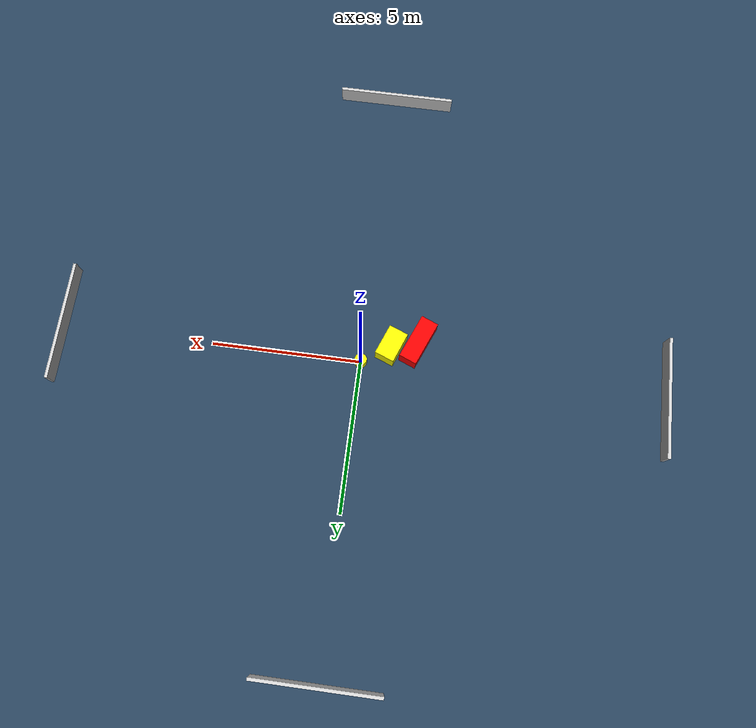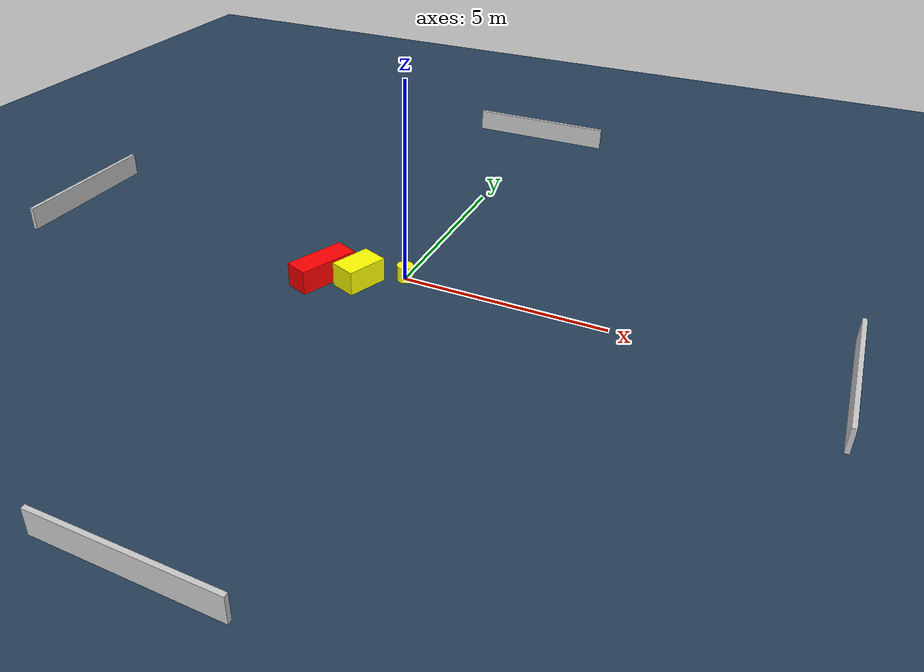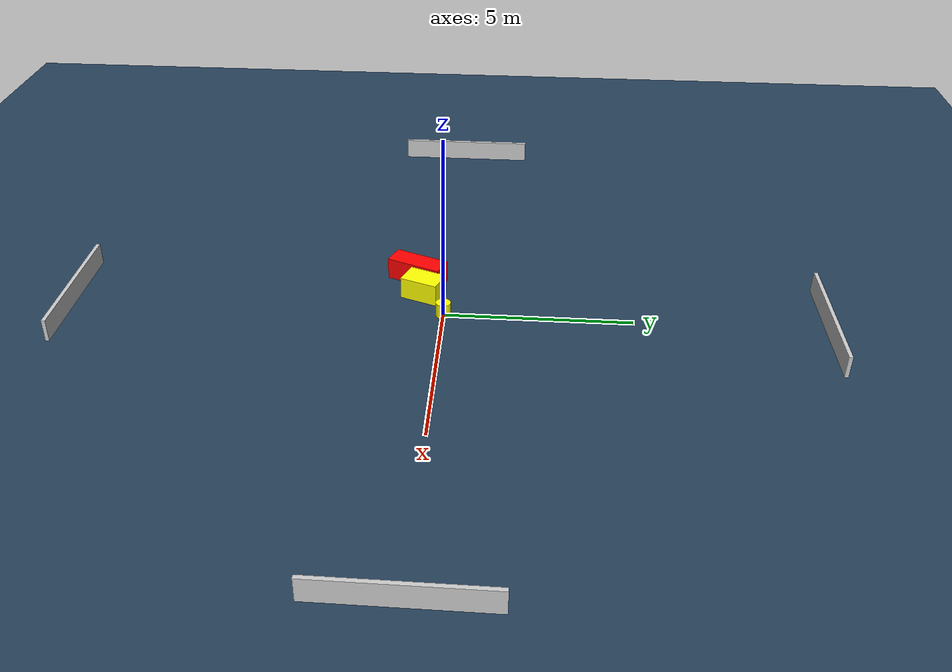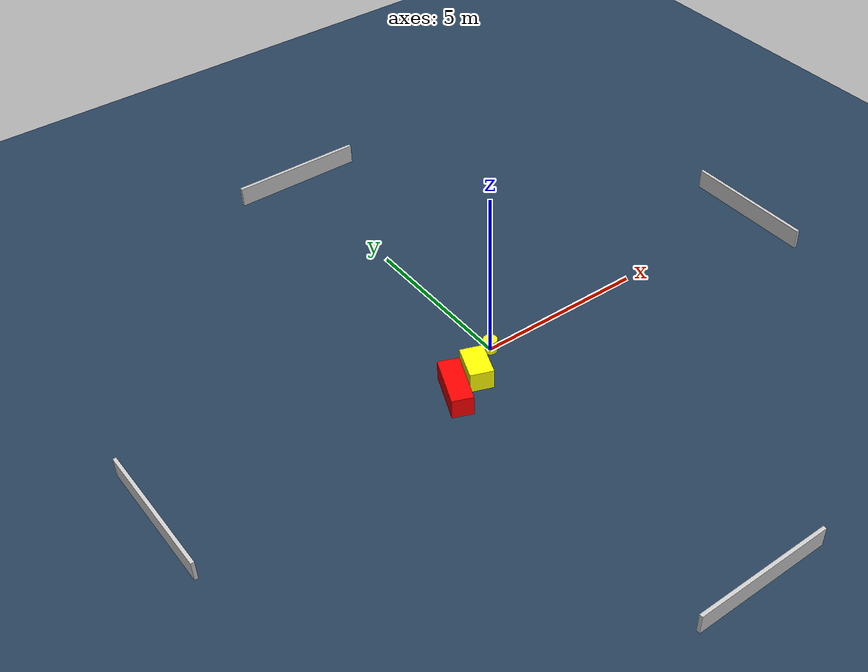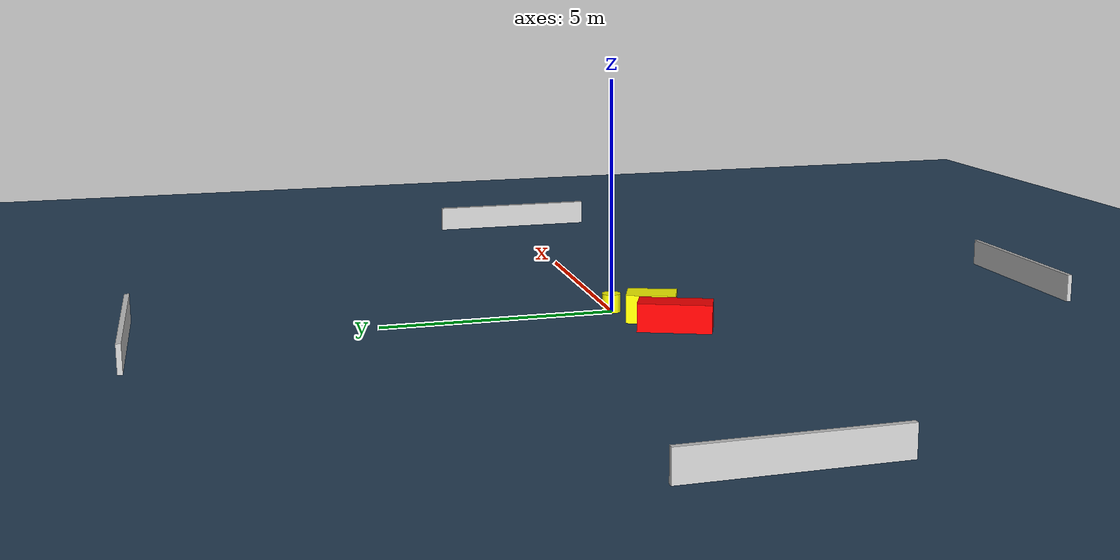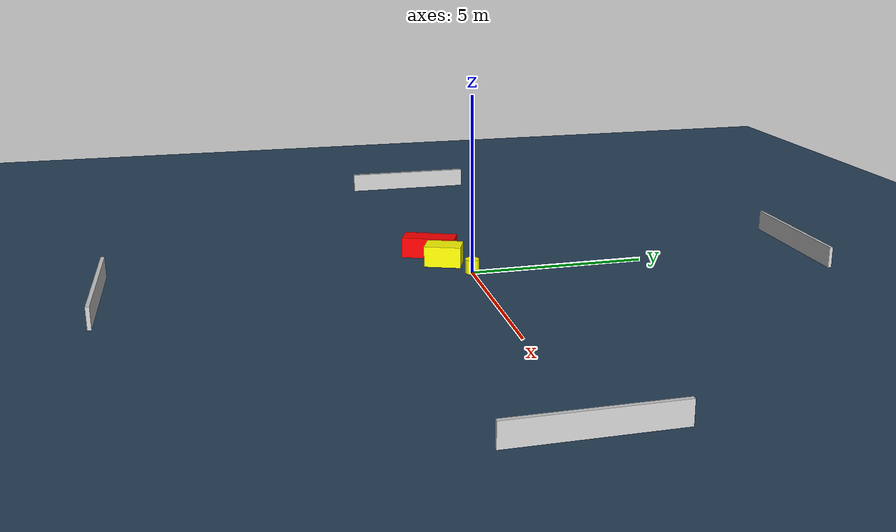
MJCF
<?xml version="1.0" ?>
<mujoco model="generated_environment">
  <option timestep="0.01" integrator="RK4" cone="elliptic"/>
  <default>
    <geom density="1"/>
  </default>
  <asset>
    <texture builtin="gradient" height="3072" name="skybox" rgb1="0.3 0.5 0.7" rgb2="0 0 0" type="skybox" width="512"/>
    <texture builtin="checker" height="300" name="groundplane" rgb1="0.2 0.3 0.4" rgb2="0.1 0.2 0.3" type="2d" width="300"/>
    <material name="groundplane" reflectance="0.2" texrepeat="5 5" texture="groundplane"/>
  </asset>
  <worldbody>
    <light dir="0 0 -1" directional="true" pos="0 0 1.5"/>
    <geom condim="3" friction="0.5 0.005 0.001" material="groundplane" name="floor" pos="0 0 0" size="0 0 0.05" type="plane"/>
    <body name="walls">
      <geom name="wall_1" condim="4" pos="-10.0 0.0 0.3" rgba="0.800000011920929 0.800000011920929 0.800000011920929 1.0" size="0.05 2.0 0.3" type="box"/>
      <geom name="wall_2" condim="4" pos="10.0 0.0 0.3" rgba="0.800000011920929 0.800000011920929 0.800000011920929 1.0" size="0.05 2.0 0.3" type="box"/>
      <geom name="wall_3" condim="4" pos="0.0 -10.0 0.3" rgba="0.800000011920929 0.800000011920929 0.800000011920929 1.0" size="2.0 0.05 0.3" type="box"/>
      <geom name="wall_4" condim="4" pos="0.0 10.0 0.3" rgba="0.800000011920929 0.800000011920929 0.800000011920929 1.0" size="2.0 0.05 0.3" type="box"/>
    </body>
    <body name="robot">
      <joint name="joint_x" type="slide" pos="0 0 0" axis="1 0 0"/>
      <joint name="joint_y" type="slide" pos="0 0 0" axis="0 1 0"/>
      <geom name="robot" type="cylinder" pos="0.0 0.0 0.2" size="0.2 0.2 0.0" mass="5.0" friction="1.0 0.005 0.0001" condim="4" rgba="1.0 1.0 0.0 1.0"/>
    </body>
    <body name="obstacle_1_movable">
      <geom name="obstacle_1_movable" condim="4" pos="-0.9334103339258659 -0.6120203668251115 0.3" euler="0 0 339.00083284736866" friction="0.0 0.005 0.001" rgba="1.0 1.0 0.0 1.0" size="0.3325985876820974 0.522896961632774 0.3" type="box" mass="0.1"/>
      <joint type="free"/>
    </body>
    <body name="obstacle_2_static">
      <geom name="obstacle_2_static" condim="4" pos="-1.8067401796617741 -0.8503282703899674 0.3" euler="0 0 247.6623077506898" friction="0.0 0.005 0.001" rgba="1.0 0.0 0.0 1.0" size="0.7722398524455096 0.30159340361018294 0.3" type="box"/>
    </body>
  </worldbody>
  <actuator>
    <motor name="actuator_x" joint="joint_x" gear="1" ctrlrange="-1 1"/>
    <motor name="actuator_y" joint="joint_y" gear="1" ctrlrange="-1 1"/>
  </actuator>
</mujoco>
